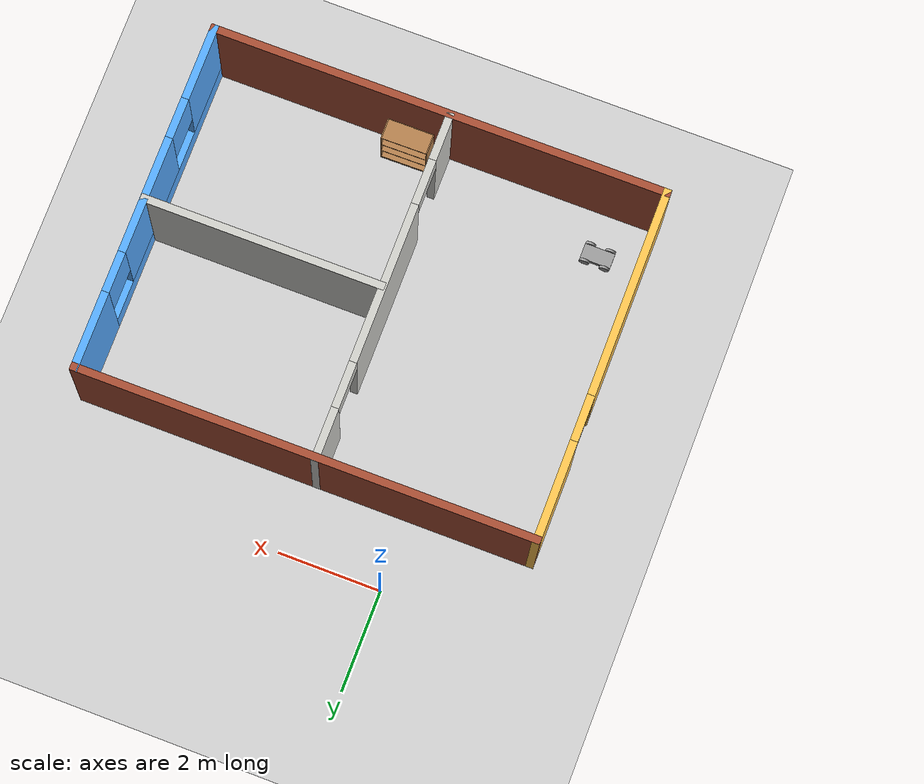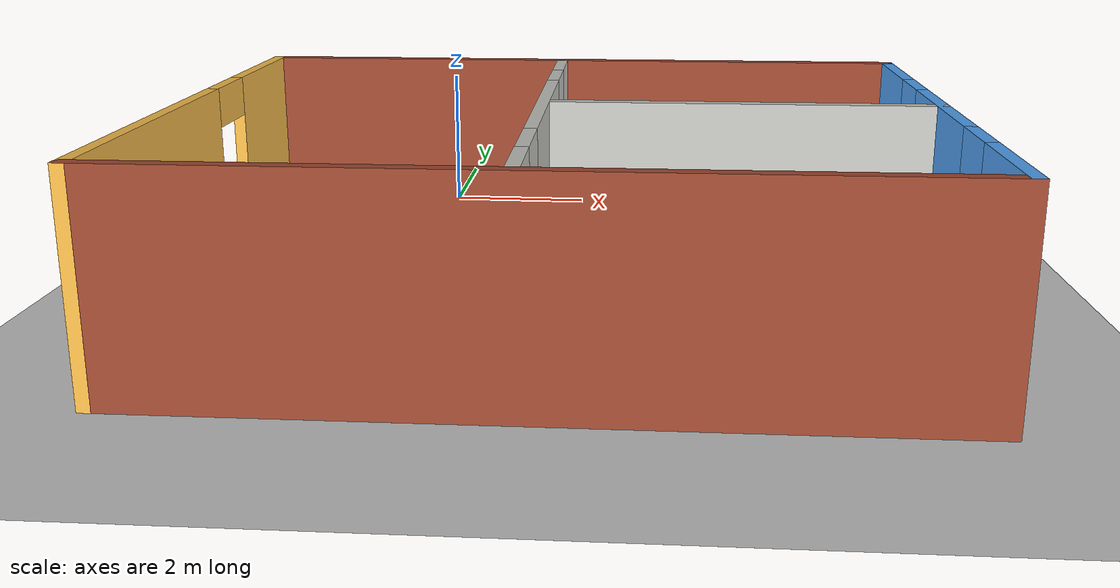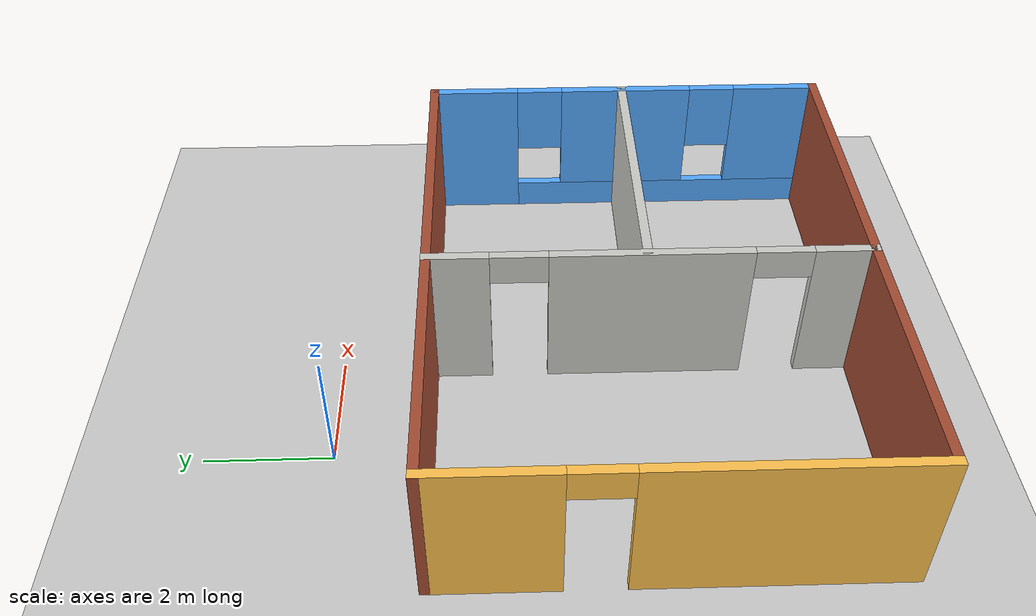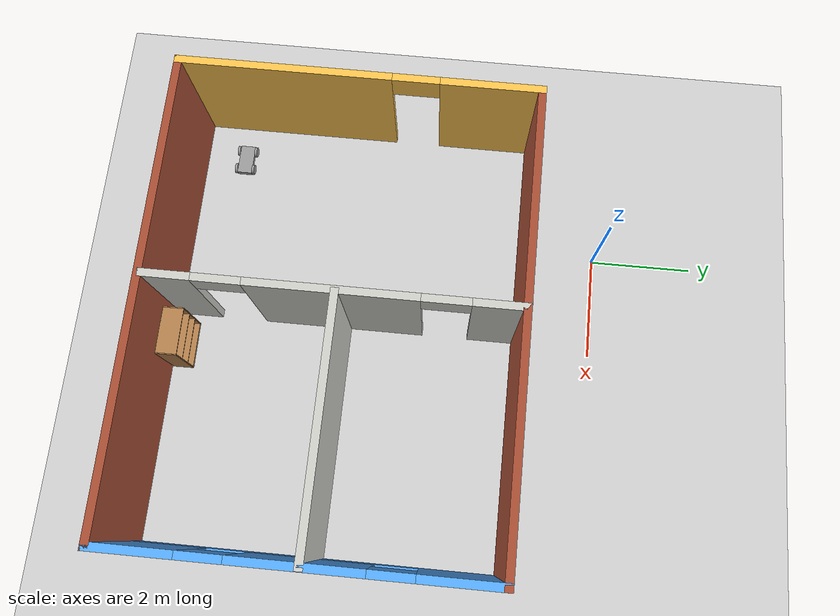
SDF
<sdf version="1.6">
 <world name="default">
  <model name="ground_plane">
   <static>1</static>
   <link name="link">
    <collision name="collision">
     <geometry><plane><normal>0 0 1</normal><size>100 100</size></plane></geometry>
     <surface><friction><ode><mu>100</mu><mu2>50</mu2></ode></friction></surface>
    </collision>
    <visual name="visual">
     <cast_shadows>0</cast_shadows>
     <geometry><plane><normal>0 0 1</normal><size>100 100</size></plane></geometry>
     <material>
      <script><uri>file://media/materials/scripts/gazebo.material</uri><name>Gazebo/Grey</name></script>
     </material>
    </visual>
   </link>
  </model>
  <model name="SomeAppartments">
   <pose>2.015 -4.89361 0 0 -0 0</pose>
   <link name="Wall_0">
    <collision name="Wall_0_Collision">
     <geometry><box><size>9 0.15 2.5</size></box></geometry>
     <pose>0 0 1.25 0 -0 0</pose>
    </collision>
    <visual name="Wall_0_Visual">
     <pose>0 0 1.25 0 -0 0</pose>
     <geometry><box><size>9 0.15 2.5</size></box></geometry>
     <material>
      <script><uri>file://media/materials/scripts/gazebo.material</uri><name>Gazebo/Bricks</name></script>
      <ambient>1 0.764706 0.305882 1</ambient>
     </material>
     <meta><layer>0</layer></meta>
    </visual>
    <pose>0 3.42361 0 0 -0 0</pose>
   </link>
   <link name="Wall_11">
    <collision name="Wall_11_Collision">
     <geometry><box><size>4.75 0.15 2.5</size></box></geometry>
     <pose>0 0 1.25 0 -0 0</pose>
    </collision>
    <visual name="Wall_11_Visual">
     <pose>0 0 1.25 0 -0 0</pose>
     <geometry><box><size>4.75 0.15 2.5</size></box></geometry>
     <material>
      <script><uri>file://media/materials/scripts/gazebo.material</uri><name>Gazebo/CeilingTiled</name></script>
      <ambient>0.921569 0.807843 0.615686 1</ambient>
     </material>
     <meta><layer>0</layer></meta>
    </visual>
    <pose>2.11632 0.050811 0 0 -0 0</pose>
   </link>
   <link name="Wall_2">
    <pose>4.425 -0.001393 0 0 0 -1.5708</pose>
    <visual name="Wall_2_Visual_0">
     <pose>-2.71689 0 1.25 0 -0 0</pose>
     <geometry><box><size>1.56622 0.15 2.5</size></box></geometry>
     <material>
      <script><uri>file://media/materials/scripts/gazebo.material</uri><name>Gazebo/Grey</name></script>
      <ambient>0.333333 0.666667 1 1</ambient>
     </material>
     <meta><layer>0</layer></meta>
    </visual>
    <collision name="Wall_2_Collision_0">
     <geometry><box><size>1.56622 0.15 2.5</size></box></geometry>
     <pose>-2.71689 0 1.25 0 -0 0</pose>
    </collision>
    <visual name="Wall_2_Visual_1">
     <pose>0.783108 0 0.25 0 -0 0</pose>
     <geometry><box><size>5.43378 0.15 0.5</size></box></geometry>
     <material>
      <script><uri>file://media/materials/scripts/gazebo.material</uri><name>Gazebo/Grey</name></script>
      <ambient>0.333333 0.666667 1 1</ambient>
     </material>
     <meta><layer>0</layer></meta>
    </visual>
    <collision name="Wall_2_Collision_1">
     <geometry><box><size>5.43378 0.15 0.5</size></box></geometry>
     <pose>0.783108 0 0.25 0 -0 0</pose>
    </collision>
    <visual name="Wall_2_Visual_2">
     <pose>0.022831 0 1.5 0 -0 0</pose>
     <geometry><box><size>2.31323 0.15 2</size></box></geometry>
     <material>
      <script><uri>file://media/materials/scripts/gazebo.material</uri><name>Gazebo/Grey</name></script>
      <ambient>0.333333 0.666667 1 1</ambient>
     </material>
     <meta><layer>0</layer></meta>
    </visual>
    <collision name="Wall_2_Collision_2">
     <geometry><box><size>2.31323 0.15 2</size></box></geometry>
     <pose>0.022831 0 1.5 0 -0 0</pose>
    </collision>
    <visual name="Wall_2_Visual_3">
     <pose>2.73972 0 1.5 0 -0 0</pose>
     <geometry><box><size>1.52055 0.15 2</size></box></geometry>
     <material>
      <script><uri>file://media/materials/scripts/gazebo.material</uri><name>Gazebo/Grey</name></script>
      <ambient>0.333333 0.666667 1 1</ambient>
     </material>
     <meta><layer>0</layer></meta>
    </visual>
    <collision name="Wall_2_Collision_3">
     <geometry><box><size>1.52055 0.15 2</size></box></geometry>
     <pose>2.73972 0 1.5 0 -0 0</pose>
    </collision>
    <visual name="Wall_2_Visual_4">
     <pose>-1.53378 0 1.9 0 -0 0</pose>
     <geometry><box><size>0.8 0.15 1.2</size></box></geometry>
     <material>
      <script><uri>file://media/materials/scripts/gazebo.material</uri><name>Gazebo/Grey</name></script>
      <ambient>0.333333 0.666667 1 1</ambient>
     </material>
     <meta><layer>0</layer></meta>
    </visual>
    <collision name="Wall_2_Collision_4">
     <geometry><box><size>0.8 0.15 1.2</size></box></geometry>
     <pose>-1.53378 0 1.9 0 -0 0</pose>
    </collision>
    <visual name="Wall_2_Visual_5">
     <pose>1.57945 0 1.9 0 -0 0</pose>
     <geometry><box><size>0.8 0.15 1.2</size></box></geometry>
     <material>
      <script><uri>file://media/materials/scripts/gazebo.material</uri><name>Gazebo/Grey</name></script>
      <ambient>0.333333 0.666667 1 1</ambient>
     </material>
     <meta><layer>0</layer></meta>
    </visual>
    <collision name="Wall_2_Collision_5">
     <geometry><box><size>0.8 0.15 1.2</size></box></geometry>
     <pose>1.57945 0 1.9 0 -0 0</pose>
    </collision>
   </link>
   <link name="Wall_3">
    <collision name="Wall_3_Collision">
     <geometry><box><size>9 0.15 2.5</size></box></geometry>
     <pose>0 0 1.25 0 -0 0</pose>
    </collision>
    <visual name="Wall_3_Visual">
     <pose>0 0 1.25 0 -0 0</pose>
     <geometry><box><size>9 0.15 2.5</size></box></geometry>
     <material>
      <script><uri>file://media/materials/scripts/gazebo.material</uri><name>Gazebo/Bricks</name></script>
      <ambient>1 0.764706 0.305882 1</ambient>
     </material>
     <meta><layer>0</layer></meta>
    </visual>
    <pose>0 -3.42639 0 0 -0 3.14159</pose>
   </link>
   <link name="Wall_7">
    <pose>-4.425 -0.001393 0 0 0 -1.5708</pose>
    <visual name="Wall_7_Visual_0">
     <pose>-2.50578 0 1.25 0 -0 0</pose>
     <geometry><box><size>1.98845 0.15 2.5</size></box></geometry>
     <material>
      <script><uri>file://media/materials/scripts/gazebo.material</uri><name>Gazebo/Grey</name></script>
      <ambient>1 0.764706 0.305882 1</ambient>
     </material>
     <meta><layer>0</layer></meta>
    </visual>
    <collision name="Wall_7_Collision_0">
     <geometry><box><size>1.98845 0.15 2.5</size></box></geometry>
     <pose>-2.50578 0 1.25 0 -0 0</pose>
    </collision>
    <visual name="Wall_7_Visual_1">
     <pose>1.44422 0 1.25 0 -0 0</pose>
     <geometry><box><size>4.11155 0.15 2.5</size></box></geometry>
     <material>
      <script><uri>file://media/materials/scripts/gazebo.material</uri><name>Gazebo/Grey</name></script>
      <ambient>1 0.764706 0.305882 1</ambient>
     </material>
     <meta><layer>0</layer></meta>
    </visual>
    <collision name="Wall_7_Collision_1">
     <geometry><box><size>4.11155 0.15 2.5</size></box></geometry>
     <pose>1.44422 0 1.25 0 -0 0</pose>
    </collision>
    <visual name="Wall_7_Visual_2">
     <pose>-1.06155 0 2.25 0 -0 0</pose>
     <geometry><box><size>0.9 0.15 0.5</size></box></geometry>
     <material>
      <script><uri>file://media/materials/scripts/gazebo.material</uri><name>Gazebo/Grey</name></script>
      <ambient>1 0.764706 0.305882 1</ambient>
     </material>
     <meta><layer>0</layer></meta>
    </visual>
    <collision name="Wall_7_Collision_2">
     <geometry><box><size>0.9 0.15 0.5</size></box></geometry>
     <pose>-1.06155 0 2.25 0 -0 0</pose>
    </collision>
   </link>
   <link name="Wall_9">
    <pose>-0.218658 0.001393 0 0 0 -1.5708</pose>
    <visual name="Wall_9_Visual_0">
     <pose>-2.97915 0 1.25 0 -0 0</pose>
     <geometry><box><size>1.0417 0.15 2.5</size></box></geometry>
     <material>
      <script><uri>file://media/materials/scripts/gazebo.material</uri><name>Gazebo/CeilingTiled</name></script>
      <ambient>0.921569 0.807843 0.615686 1</ambient>
     </material>
     <meta><layer>0</layer></meta>
    </visual>
    <collision name="Wall_9_Collision_0">
     <geometry><box><size>1.0417 0.15 2.5</size></box></geometry>
     <pose>-2.97915 0 1.25 0 -0 0</pose>
    </collision>
    <visual name="Wall_9_Visual_1">
     <pose>0.020306 0 1.25 0 -0 0</pose>
     <geometry><box><size>3.15722 0.15 2.5</size></box></geometry>
     <material>
      <script><uri>file://media/materials/scripts/gazebo.material</uri><name>Gazebo/CeilingTiled</name></script>
      <ambient>0.921569 0.807843 0.615686 1</ambient>
     </material>
     <meta><layer>0</layer></meta>
    </visual>
    <collision name="Wall_9_Collision_1">
     <geometry><box><size>3.15722 0.15 2.5</size></box></geometry>
     <pose>0.020306 0 1.25 0 -0 0</pose>
    </collision>
    <visual name="Wall_9_Visual_2">
     <pose>2.99946 0 1.25 0 -0 0</pose>
     <geometry><box><size>1.00108 0.15 2.5</size></box></geometry>
     <material>
      <script><uri>file://media/materials/scripts/gazebo.material</uri><name>Gazebo/CeilingTiled</name></script>
      <ambient>0.921569 0.807843 0.615686 1</ambient>
     </material>
     <meta><layer>0</layer></meta>
    </visual>
    <collision name="Wall_9_Collision_2">
     <geometry><box><size>1.00108 0.15 2.5</size></box></geometry>
     <pose>2.99946 0 1.25 0 -0 0</pose>
    </collision>
    <visual name="Wall_9_Visual_3">
     <pose>-2.00831 0 2.25 0 -0 0</pose>
     <geometry><box><size>0.9 0.15 0.5</size></box></geometry>
     <material>
      <script><uri>file://media/materials/scripts/gazebo.material</uri><name>Gazebo/CeilingTiled</name></script>
      <ambient>0.921569 0.807843 0.615686 1</ambient>
     </material>
     <meta><layer>0</layer></meta>
    </visual>
    <collision name="Wall_9_Collision_3">
     <geometry><box><size>0.9 0.15 0.5</size></box></geometry>
     <pose>-2.00831 0 2.25 0 -0 0</pose>
    </collision>
    <visual name="Wall_9_Visual_4">
     <pose>2.04892 0 2.25 0 -0 0</pose>
     <geometry><box><size>0.9 0.15 0.5</size></box></geometry>
     <material>
      <script><uri>file://media/materials/scripts/gazebo.material</uri><name>Gazebo/CeilingTiled</name></script>
      <ambient>0.921569 0.807843 0.615686 1</ambient>
     </material>
     <meta><layer>0</layer></meta>
    </visual>
    <collision name="Wall_9_Collision_4">
     <geometry><box><size>0.9 0.15 0.5</size></box></geometry>
     <pose>2.04892 0 2.25 0 -0 0</pose>
    </collision>
   </link>
   <static>1</static>
  </model>
  <model name="AutoCart">
   <link name="link_0">
    <inertial>
     <mass>1</mass>
     <inertia>
      <ixx>0.166667</ixx>
      <ixy>0</ixy>
      <ixz>0</ixz>
      <iyy>0.166667</iyy>
      <iyz>0</iyz>
      <izz>0.166667</izz>
     </inertia>
    </inertial>
    <visual name="visual">
     <geometry><box><size>0.6 0.3 0.1</size></box></geometry>
     <material>
      <lighting>1</lighting>
      <script><uri>file://media/materials/scripts/gazebo.material</uri><name>Gazebo/Grey</name></script>
      <shader type="pixel"><normal_map>__default__</normal_map></shader>
      <ambient>0.3 0.3 0.3 1</ambient>
      <diffuse>0.7 0.7 0.7 1</diffuse>
      <specular>0.01 0.01 0.01 1</specular>
      <emissive>0 0 0 1</emissive>
     </material>
    </visual>
    <collision name="collision">
     <geometry><box><size>0.6 0.3 0.1</size></box></geometry>
     <surface>
      <friction>
       <ode><mu>1</mu><mu2>1</mu2><fdir1>0 0 0</fdir1><slip1>0</slip1><slip2>0</slip2></ode>
       <torsional>
        <coefficient>1</coefficient>
        <patch_radius>0</patch_radius>
        <surface_radius>0</surface_radius>
        <use_patch_radius>1</use_patch_radius>
        <ode><slip>0</slip></ode>
       </torsional>
      </friction>
      <bounce><restitution_coefficient>0</restitution_coefficient><threshold>1e+06</threshold></bounce>
      <contact>
       <collide_without_contact>0</collide_without_contact>
       <collide_without_contact_bitmask>1</collide_without_contact_bitmask>
       <collide_bitmask>1</collide_bitmask>
       <ode>
        <soft_cfm>0</soft_cfm>
        <soft_erp>0.2</soft_erp>
        <kp>1e+13</kp>
        <kd>1</kd>
        <max_vel>0.01</max_vel>
        <min_depth>0</min_depth>
       </ode>
       <bullet>
        <split_impulse>1</split_impulse>
        <split_impulse_penetration_threshold>-0.01</split_impulse_penetration_threshold>
        <soft_cfm>0</soft_cfm>
        <soft_erp>0.2</soft_erp>
        <kp>1e+13</kp>
        <kd>1</kd>
       </bullet>
      </contact>
     </surface>
    </collision>
   </link>
   <link name="link_1_clone">
    <pose>-0.2 0.17501 0 1.5707 -0 0</pose>
    <inertial>
     <mass>1</mass>
     <inertia><ixx>0.145833</ixx><ixy>0</ixy><ixz>0</ixz><iyy>0.145833</iyy><iyz>0</iyz><izz>0.125</izz></inertia>
    </inertial>
    <visual name="visual">
     <geometry><cylinder><radius>0.1</radius><length>0.05</length></cylinder></geometry>
     <material>
      <lighting>1</lighting>
      <script><uri>file://media/materials/scripts/gazebo.material</uri><name>Gazebo/Grey</name></script>
      <shader type="pixel"><normal_map>__default__</normal_map></shader>
      <ambient>0.3 0.3 0.3 1</ambient>
      <diffuse>0.7 0.7 0.7 1</diffuse>
      <specular>0.01 0.01 0.01 1</specular>
      <emissive>0 0 0 1</emissive>
     </material>
    </visual>
    <collision name="collision">
     <geometry><cylinder><radius>0.1</radius><length>0.05</length></cylinder></geometry>
     <surface>
      <friction>
       <ode><mu>1</mu><mu2>1</mu2><fdir1>0 0 0</fdir1><slip1>0</slip1><slip2>0</slip2></ode>
       <torsional>
        <coefficient>1</coefficient>
        <patch_radius>0</patch_radius>
        <surface_radius>0</surface_radius>
        <use_patch_radius>1</use_patch_radius>
        <ode><slip>0</slip></ode>
       </torsional>
      </friction>
      <bounce><restitution_coefficient>0</restitution_coefficient><threshold>1e+06</threshold></bounce>
      <contact>
       <collide_without_contact>0</collide_without_contact>
       <collide_without_contact_bitmask>1</collide_without_contact_bitmask>
       <collide_bitmask>1</collide_bitmask>
       <ode>
        <soft_cfm>0</soft_cfm>
        <soft_erp>0.2</soft_erp>
        <kp>1e+13</kp>
        <kd>1</kd>
        <max_vel>0.01</max_vel>
        <min_depth>0</min_depth>
       </ode>
       <bullet>
        <split_impulse>1</split_impulse>
        <split_impulse_penetration_threshold>-0.01</split_impulse_penetration_threshold>
        <soft_cfm>0</soft_cfm>
        <soft_erp>0.2</soft_erp>
        <kp>1e+13</kp>
        <kd>1</kd>
       </bullet>
      </contact>
     </surface>
    </collision>
   </link>
   <link name="link_1_clone_clone">
    <pose>0.2 0.17501 0 1.5707 -0 0</pose>
    <inertial>
     <mass>1</mass>
     <inertia><ixx>0.145833</ixx><ixy>0</ixy><ixz>0</ixz><iyy>0.145833</iyy><iyz>0</iyz><izz>0.125</izz></inertia>
    </inertial>
    <visual name="visual">
     <geometry><cylinder><radius>0.1</radius><length>0.05</length></cylinder></geometry>
     <material>
      <lighting>1</lighting>
      <script><uri>file://media/materials/scripts/gazebo.material</uri><name>Gazebo/Grey</name></script>
      <shader type="pixel"><normal_map>__default__</normal_map></shader>
      <ambient>0.3 0.3 0.3 1</ambient>
      <diffuse>0.7 0.7 0.7 1</diffuse>
      <specular>0.01 0.01 0.01 1</specular>
      <emissive>0 0 0 1</emissive>
     </material>
    </visual>
    <collision name="collision">
     <geometry><cylinder><radius>0.1</radius><length>0.05</length></cylinder></geometry>
     <surface>
      <friction>
       <ode><mu>1</mu><mu2>1</mu2><fdir1>0 0 0</fdir1><slip1>0</slip1><slip2>0</slip2></ode>
       <torsional>
        <coefficient>1</coefficient>
        <patch_radius>0</patch_radius>
        <surface_radius>0</surface_radius>
        <use_patch_radius>1</use_patch_radius>
        <ode><slip>0</slip></ode>
       </torsional>
      </friction>
      <bounce><restitution_coefficient>0</restitution_coefficient><threshold>1e+06</threshold></bounce>
      <contact>
       <collide_without_contact>0</collide_without_contact>
       <collide_without_contact_bitmask>1</collide_without_contact_bitmask>
       <collide_bitmask>1</collide_bitmask>
       <ode>
        <soft_cfm>0</soft_cfm>
        <soft_erp>0.2</soft_erp>
        <kp>1e+13</kp>
        <kd>1</kd>
        <max_vel>0.01</max_vel>
        <min_depth>0</min_depth>
       </ode>
       <bullet>
        <split_impulse>1</split_impulse>
        <split_impulse_penetration_threshold>-0.01</split_impulse_penetration_threshold>
        <soft_cfm>0</soft_cfm>
        <soft_erp>0.2</soft_erp>
        <kp>1e+13</kp>
        <kd>1</kd>
       </bullet>
      </contact>
     </surface>
    </collision>
   </link>
   <link name="link_1_clone_clone_0">
    <pose>-0.2 -0.17501 0 1.5707 -0 0</pose>
    <inertial>
     <mass>1</mass>
     <inertia><ixx>0.145833</ixx><ixy>0</ixy><ixz>0</ixz><iyy>0.145833</iyy><iyz>0</iyz><izz>0.125</izz></inertia>
    </inertial>
    <visual name="visual">
     <geometry><cylinder><radius>0.1</radius><length>0.05</length></cylinder></geometry>
     <material>
      <lighting>1</lighting>
      <script><uri>file://media/materials/scripts/gazebo.material</uri><name>Gazebo/Grey</name></script>
      <shader type="pixel"><normal_map>__default__</normal_map></shader>
      <ambient>0.3 0.3 0.3 1</ambient>
      <diffuse>0.7 0.7 0.7 1</diffuse>
      <specular>0.01 0.01 0.01 1</specular>
      <emissive>0 0 0 1</emissive>
     </material>
    </visual>
    <collision name="collision">
     <geometry><cylinder><radius>0.1</radius><length>0.05</length></cylinder></geometry>
     <surface>
      <friction>
       <ode><mu>1</mu><mu2>1</mu2><fdir1>0 0 0</fdir1><slip1>0</slip1><slip2>0</slip2></ode>
       <torsional>
        <coefficient>1</coefficient>
        <patch_radius>0</patch_radius>
        <surface_radius>0</surface_radius>
        <use_patch_radius>1</use_patch_radius>
        <ode><slip>0</slip></ode>
       </torsional>
      </friction>
      <bounce><restitution_coefficient>0</restitution_coefficient><threshold>1e+06</threshold></bounce>
      <contact>
       <collide_without_contact>0</collide_without_contact>
       <collide_without_contact_bitmask>1</collide_without_contact_bitmask>
       <collide_bitmask>1</collide_bitmask>
       <ode>
        <soft_cfm>0</soft_cfm>
        <soft_erp>0.2</soft_erp>
        <kp>1e+13</kp>
        <kd>1</kd>
        <max_vel>0.01</max_vel>
        <min_depth>0</min_depth>
       </ode>
       <bullet>
        <split_impulse>1</split_impulse>
        <split_impulse_penetration_threshold>-0.01</split_impulse_penetration_threshold>
        <soft_cfm>0</soft_cfm>
        <soft_erp>0.2</soft_erp>
        <kp>1e+13</kp>
        <kd>1</kd>
       </bullet>
      </contact>
     </surface>
    </collision>
   </link>
   <link name="link_1_clone_clone_1">
    <pose>0.2 -0.17501 0 1.5707 -0 0</pose>
    <inertial>
     <mass>1</mass>
     <inertia><ixx>0.145833</ixx><ixy>0</ixy><ixz>0</ixz><iyy>0.145833</iyy><iyz>0</iyz><izz>0.125</izz></inertia>
    </inertial>
    <visual name="visual">
     <geometry><cylinder><radius>0.1</radius><length>0.05</length></cylinder></geometry>
     <material>
      <lighting>1</lighting>
      <script><uri>file://media/materials/scripts/gazebo.material</uri><name>Gazebo/Grey</name></script>
      <shader type="pixel"><normal_map>__default__</normal_map></shader>
      <ambient>0.3 0.3 0.3 1</ambient>
      <diffuse>0.7 0.7 0.7 1</diffuse>
      <specular>0.01 0.01 0.01 1</specular>
      <emissive>0 0 0 1</emissive>
     </material>
    </visual>
    <collision name="collision">
     <geometry><cylinder><radius>0.1</radius><length>0.05</length></cylinder></geometry>
     <surface>
      <friction>
       <ode><mu>1</mu><mu2>1</mu2><fdir1>0 0 0</fdir1><slip1>0</slip1><slip2>0</slip2></ode>
       <torsional>
        <coefficient>1</coefficient>
        <patch_radius>0</patch_radius>
        <surface_radius>0</surface_radius>
        <use_patch_radius>1</use_patch_radius>
        <ode><slip>0</slip></ode>
       </torsional>
      </friction>
      <bounce><restitution_coefficient>0</restitution_coefficient><threshold>1e+06</threshold></bounce>
      <contact>
       <collide_without_contact>0</collide_without_contact>
       <collide_without_contact_bitmask>1</collide_without_contact_bitmask>
       <collide_bitmask>1</collide_bitmask>
       <ode>
        <soft_cfm>0</soft_cfm>
        <soft_erp>0.2</soft_erp>
        <kp>1e+13</kp>
        <kd>1</kd>
        <max_vel>0.01</max_vel>
        <min_depth>0</min_depth>
       </ode>
       <bullet>
        <split_impulse>1</split_impulse>
        <split_impulse_penetration_threshold>-0.01</split_impulse_penetration_threshold>
        <soft_cfm>0</soft_cfm>
        <soft_erp>0.2</soft_erp>
        <kp>1e+13</kp>
        <kd>1</kd>
       </bullet>
      </contact>
     </surface>
    </collision>
   </link>
   <joint name="link_0_JOINT_3" type="revolute">
    <parent>link_0</parent>
    <child>link_1_clone_clone_1</child>
    <axis>
     <xyz>0 0 1</xyz>
     <use_parent_model_frame>0</use_parent_model_frame>
     <limit>
      <lower>-1.79769e+308</lower>
      <upper>1.79769e+308</upper>
      <effort>-1</effort>
      <velocity>-1</velocity>
     </limit>
     <dynamics>
      <spring_reference>0</spring_reference>
      <spring_stiffness>0</spring_stiffness>
      <damping>0</damping>
     </dynamics>
    </axis>
    <physics>
     <ode><limit><cfm>0</cfm><erp>0.2</erp></limit><suspension><cfm>0</cfm><erp>0.2</erp></suspension></ode>
    </physics>
   </joint>
   <joint name="link_0_JOINT_4" type="revolute">
    <parent>link_0</parent>
    <child>link_1_clone_clone_0</child>
    <axis>
     <xyz>0 0 1</xyz>
     <use_parent_model_frame>0</use_parent_model_frame>
     <limit>
      <lower>-1.79769e+308</lower>
      <upper>1.79769e+308</upper>
      <effort>-1</effort>
      <velocity>-1</velocity>
     </limit>
     <dynamics>
      <spring_reference>0</spring_reference>
      <spring_stiffness>0</spring_stiffness>
      <damping>0</damping>
     </dynamics>
    </axis>
    <physics>
     <ode><limit><cfm>0</cfm><erp>0.2</erp></limit><suspension><cfm>0</cfm><erp>0.2</erp></suspension></ode>
    </physics>
   </joint>
   <joint name="link_0_JOINT_5" type="revolute">
    <parent>link_0</parent>
    <child>link_1_clone</child>
    <axis>
     <xyz>0 0 1</xyz>
     <use_parent_model_frame>0</use_parent_model_frame>
     <limit>
      <lower>-1.79769e+308</lower>
      <upper>1.79769e+308</upper>
      <effort>-1</effort>
      <velocity>-1</velocity>
     </limit>
     <dynamics>
      <spring_reference>0</spring_reference>
      <spring_stiffness>0</spring_stiffness>
      <damping>0</damping>
     </dynamics>
    </axis>
    <physics>
     <ode><limit><cfm>0</cfm><erp>0.2</erp></limit><suspension><cfm>0</cfm><erp>0.2</erp></suspension></ode>
    </physics>
   </joint>
   <joint name="link_0_JOINT_6" type="revolute">
    <parent>link_0</parent>
    <child>link_1_clone_clone</child>
    <axis>
     <xyz>0 0 1</xyz>
     <use_parent_model_frame>0</use_parent_model_frame>
     <limit>
      <lower>-1.79769e+308</lower>
      <upper>1.79769e+308</upper>
      <effort>-1</effort>
      <velocity>-1</velocity>
     </limit>
     <dynamics>
      <spring_reference>0</spring_reference>
      <spring_stiffness>0</spring_stiffness>
      <damping>0</damping>
     </dynamics>
    </axis>
    <physics>
     <ode><limit><cfm>0</cfm><erp>0.2</erp></limit><suspension><cfm>0</cfm><erp>0.2</erp></suspension></ode>
    </physics>
   </joint>
   <static>0</static>
   <pose>-1.5646 -7.40946 0.100002 0 0 -0.006411</pose>
  </model>
  <model name="bookshelf_clone">
   <static>1</static>
   <link name="link">
    <inertial><mass>1</mass></inertial>
    <collision name="back">
     <pose>0 0.005 0.6 0 -0 0</pose>
     <geometry><box><size>0.9 0.01 1.2</size></box></geometry>
    </collision>
    <visual name="visual1">
     <pose>0 0.005 0.6 0 -0 0</pose>
     <geometry><box><size>0.9 0.01 1.2</size></box></geometry>
     <material>
      <script><uri>file://media/materials/scripts/gazebo.material</uri><name>Gazebo/Wood</name></script>
     </material>
    </visual>
    <collision name="left_side">
     <pose>0.45 -0.195 0.6 0 -0 0</pose>
     <geometry><box><size>0.02 0.4 1.2</size></box></geometry>
    </collision>
    <visual name="visual2">
     <pose>0.45 -0.195 0.6 0 -0 0</pose>
     <geometry><box><size>0.02 0.4 1.2</size></box></geometry>
     <material>
      <script><uri>file://media/materials/scripts/gazebo.material</uri><name>Gazebo/Wood</name></script>
     </material>
    </visual>
    <collision name="right_side">
     <pose>-0.45 -0.195 0.6 0 -0 0</pose>
     <geometry><box><size>0.02 0.4 1.2</size></box></geometry>
    </collision>
    <visual name="visual3">
     <pose>-0.45 -0.195 0.6 0 -0 0</pose>
     <geometry><box><size>0.02 0.4 1.2</size></box></geometry>
     <material>
      <script><uri>file://media/materials/scripts/gazebo.material</uri><name>Gazebo/Wood</name></script>
     </material>
    </visual>
    <collision name="bottom">
     <pose>0 -0.195 0.03 0 -0 0</pose>
     <geometry><box><size>0.88 0.4 0.06</size></box></geometry>
    </collision>
    <visual name="visual4">
     <pose>0 -0.195 0.03 0 -0 0</pose>
     <geometry><box><size>0.88 0.4 0.06</size></box></geometry>
     <material>
      <script><uri>file://media/materials/scripts/gazebo.material</uri><name>Gazebo/Wood</name></script>
     </material>
    </visual>
    <collision name="top">
     <pose>0 -0.195 1.19 0 -0 0</pose>
     <geometry><box><size>0.88 0.4 0.02</size></box></geometry>
    </collision>
    <visual name="visual5">
     <pose>0 -0.195 1.19 0 -0 0</pose>
     <geometry><box><size>0.88 0.4 0.02</size></box></geometry>
     <material>
      <script><uri>file://media/materials/scripts/gazebo.material</uri><name>Gazebo/Wood</name></script>
     </material>
    </visual>
    <collision name="low_shelf">
     <pose>0 -0.195 0.43 0 -0 0</pose>
     <geometry><box><size>0.88 0.4 0.02</size></box></geometry>
    </collision>
    <visual name="visual6">
     <pose>0 -0.195 0.43 0 -0 0</pose>
     <geometry><box><size>0.88 0.4 0.02</size></box></geometry>
     <material>
      <script><uri>file://media/materials/scripts/gazebo.material</uri><name>Gazebo/Wood</name></script>
     </material>
    </visual>
    <collision name="high_shelf">
     <pose>0 -0.195 0.8 0 -0 0</pose>
     <geometry><box><size>0.88 0.4 0.02</size></box></geometry>
    </collision>
    <visual name="visual7">
     <pose>0 -0.195 0.8 0 -0 0</pose>
     <geometry><box><size>0.88 0.4 0.02</size></box></geometry>
     <material>
      <script><uri>file://media/materials/scripts/gazebo.material</uri><name>Gazebo/Wood</name></script>
     </material>
    </visual>
   </link>
   <pose>2.51148 -8.21843 0 0 0 -3.13291</pose>
  </model>
 </world>
</sdf>
